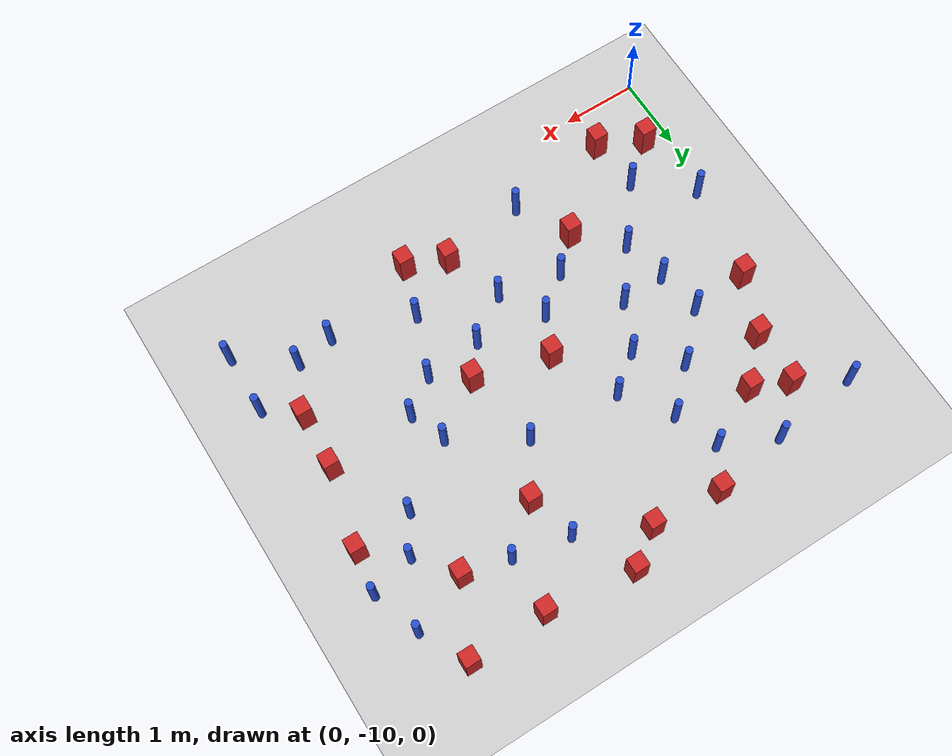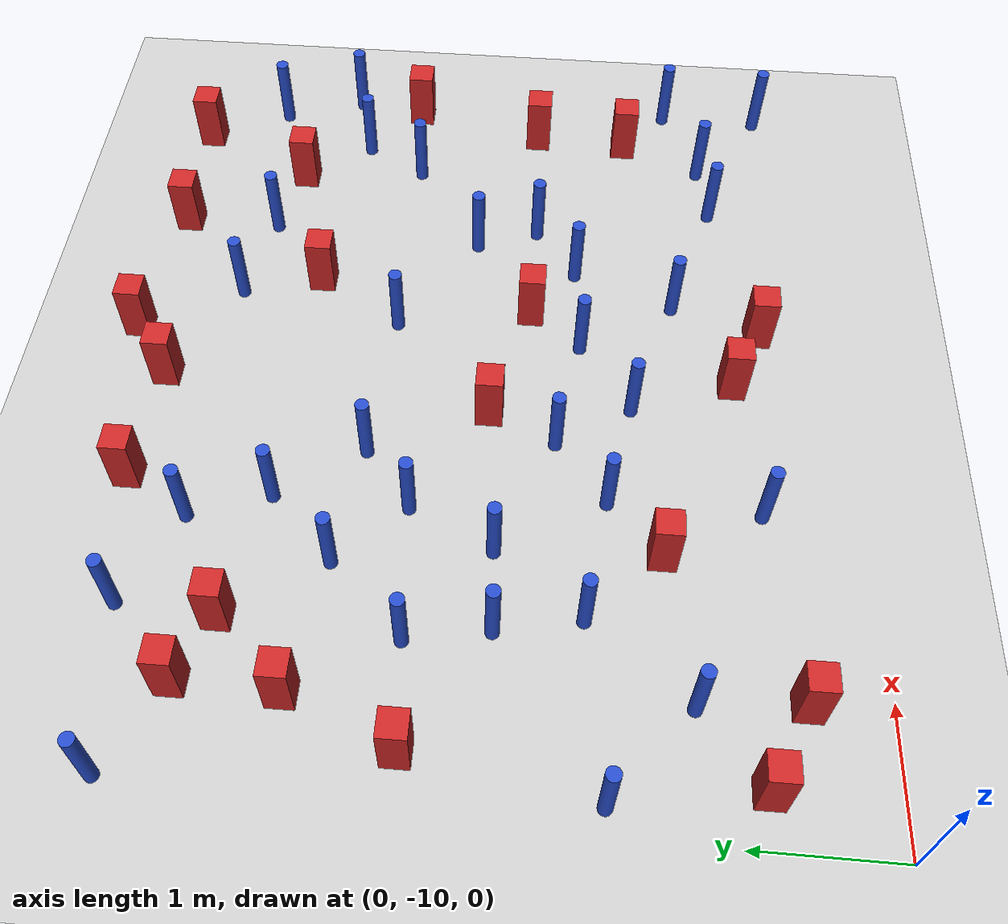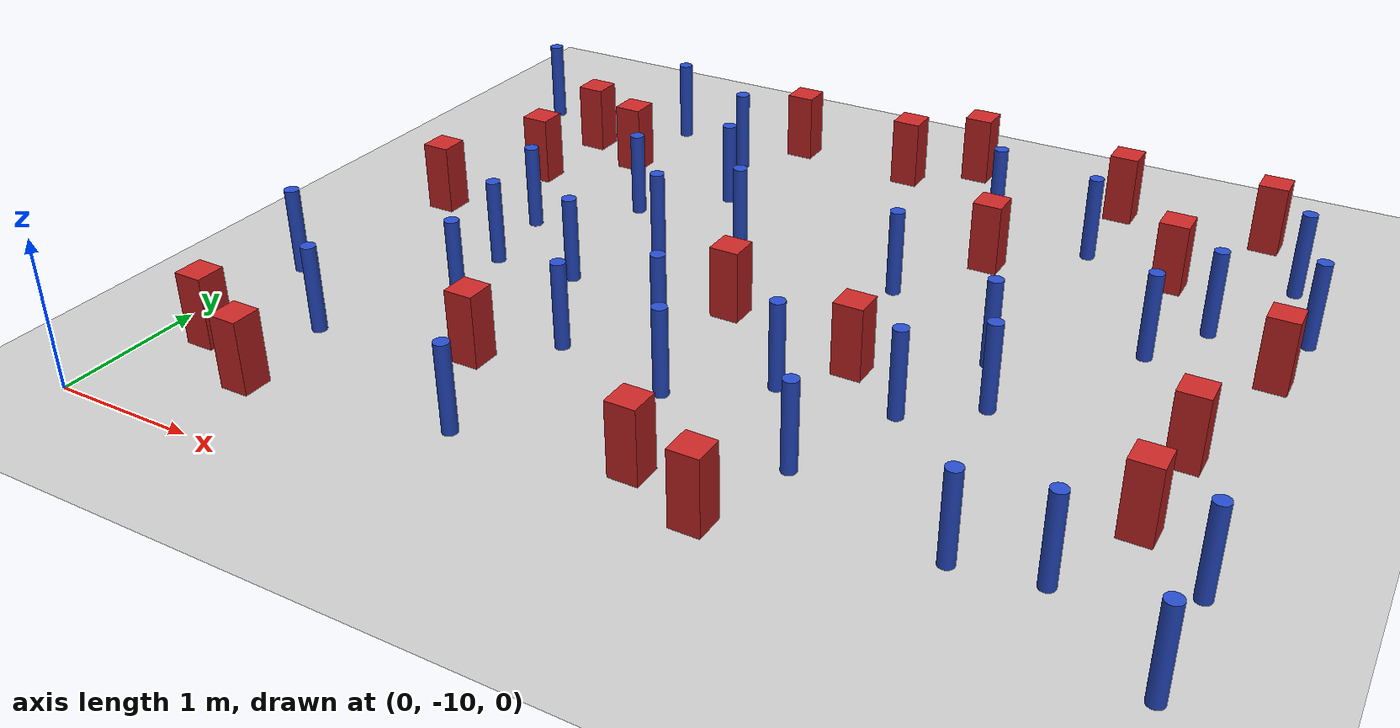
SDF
<sdf version="1.6">
 <world name="default">
  <model name="ground_plane">
   <static>1</static>
   <link name="link">
    <collision name="collision">
     <geometry><plane><normal>0 0 1</normal><size>100 100</size></plane></geometry>
     <surface><friction><ode><mu>100</mu><mu2>50</mu2></ode></friction></surface>
    </collision>
    <visual name="visual">
     <cast_shadows>0</cast_shadows>
     <geometry><plane><normal>0 0 1</normal><size>100 100</size></plane></geometry>
     <material>
      <ambient>1.0 1.0 1.0 1.0</ambient>
      <diffuse>0.8 0.8 0.8 1.0</diffuse>
      <specular>0.01 0.01 0.01 1.000000</specular>
     </material>
    </visual>
   </link>
  </model>
  <model name="square_post_obstacle6">
   <static>true</static>
   <pose>0.415322058031 -6.86767348785 8.22691968438e-08 7.2212513382e-06 -7.54495500217e-07 2.29674213826e-05</pose>
   <link name="link">
    <pose>0 0 0.25 0 -0 0</pose>
    <inertial>
     <mass>100</mass>
     <inertia>
      <ixx>0.166667</ixx>
      <ixy>0</ixy>
      <ixz>0</ixz>
      <iyy>0.166667</iyy>
      <iyz>0</iyz>
      <izz>0.166667</izz>
     </inertia>
    </inertial>
    <collision name="collision"><geometry><box><size>.2 .2 .5</size></box></geometry></collision>
    <visual name="visual">
     <geometry><box><size>.2 .2 .5</size></box></geometry>
     <material>
      <script><name>Gazebo/Red</name><uri>file://media/materials/scripts/gazebo.material</uri></script>
     </material>
    </visual>
   </link>
  </model>
  <model name="pole_obstacle8">
   <static>true</static>
   <pose>4.90002891867 -7.51180466163 2.88873142074e-08 -9.90536690842e-09 4.60219948965e-07 -1.20965994976e-07</pose>
   <link name="link">
    <pose>0 0 0.3 0 -0 0</pose>
    <inertial>
     <mass>1</mass>
     <inertia><ixx>0.145833</ixx><ixy>0</ixy><ixz>0</ixz><iyy>0.145833</iyy><iyz>0</iyz><izz>0.125</izz></inertia>
    </inertial>
    <collision name="collision">
     <geometry><cylinder><radius>0.05</radius><length>.6</length></cylinder></geometry>
    </collision>
    <visual name="visual">
     <geometry><cylinder><radius>0.05</radius><length>.6</length></cylinder></geometry>
     <material>
      <script><name>Gazebo/Blue</name><uri>file://media/materials/scripts/gazebo.material</uri></script>
     </material>
    </visual>
   </link>
  </model>
  <model name="pole_obstacle9">
   <static>true</static>
   <pose>6.40183729626 -9.36785686819 2.88873142074e-08 -9.9053668967e-09 4.60219948993e-07 -1.20965994957e-07</pose>
   <link name="link">
    <pose>0 0 0.3 0 -0 0</pose>
    <inertial>
     <mass>1</mass>
     <inertia><ixx>0.145833</ixx><ixy>0</ixy><ixz>0</ixz><iyy>0.145833</iyy><iyz>0</iyz><izz>0.125</izz></inertia>
    </inertial>
    <collision name="collision">
     <geometry><cylinder><radius>0.05</radius><length>.6</length></cylinder></geometry>
    </collision>
    <visual name="visual">
     <geometry><cylinder><radius>0.05</radius><length>.6</length></cylinder></geometry>
     <material>
      <script><name>Gazebo/Blue</name><uri>file://media/materials/scripts/gazebo.material</uri></script>
     </material>
    </visual>
   </link>
  </model>
  <model name="square_post_obstacle17">
   <static>true</static>
   <pose>5.99555126417 -8.20845346596 8.22691968438e-08 7.2212513382e-06 -7.54495500217e-07 2.29674213826e-05</pose>
   <link name="link">
    <pose>0 0 0.25 0 -0 0</pose>
    <inertial>
     <mass>100</mass>
     <inertia>
      <ixx>0.166667</ixx>
      <ixy>0</ixy>
      <ixz>0</ixz>
      <iyy>0.166667</iyy>
      <iyz>0</iyz>
      <izz>0.166667</izz>
     </inertia>
    </inertial>
    <collision name="collision"><geometry><box><size>.2 .2 .5</size></box></geometry></collision>
    <visual name="visual">
     <geometry><box><size>.2 .2 .5</size></box></geometry>
     <material>
      <script><name>Gazebo/Red</name><uri>file://media/materials/scripts/gazebo.material</uri></script>
     </material>
    </visual>
   </link>
  </model>
  <model name="square_post_obstacle21">
   <static>true</static>
   <pose>5.41926579649 -5.4989104012 8.22691968438e-08 7.22125133819e-06 -7.54495500217e-07 2.29674213826e-05</pose>
   <link name="link">
    <pose>0 0 0.25 0 -0 0</pose>
    <inertial>
     <mass>100</mass>
     <inertia>
      <ixx>0.166667</ixx>
      <ixy>0</ixy>
      <ixz>0</ixz>
      <iyy>0.166667</iyy>
      <iyz>0</iyz>
      <izz>0.166667</izz>
     </inertia>
    </inertial>
    <collision name="collision"><geometry><box><size>.2 .2 .5</size></box></geometry></collision>
    <visual name="visual">
     <geometry><box><size>.2 .2 .5</size></box></geometry>
     <material>
      <script><name>Gazebo/Red</name><uri>file://media/materials/scripts/gazebo.material</uri></script>
     </material>
    </visual>
   </link>
  </model>
  <model name="pole_obstacle16">
   <static>true</static>
   <pose>1.87375932207 -7.36777202343 2.88873142074e-08 -9.90536689852e-09 4.60219948989e-07 -1.2096599496e-07</pose>
   <link name="link">
    <pose>0 0 0.3 0 -0 0</pose>
    <inertial>
     <mass>1</mass>
     <inertia><ixx>0.145833</ixx><ixy>0</ixy><ixz>0</ixz><iyy>0.145833</iyy><iyz>0</iyz><izz>0.125</izz></inertia>
    </inertial>
    <collision name="collision">
     <geometry><cylinder><radius>0.05</radius><length>.6</length></cylinder></geometry>
    </collision>
    <visual name="visual">
     <geometry><cylinder><radius>0.05</radius><length>.6</length></cylinder></geometry>
     <material>
      <script><name>Gazebo/Blue</name><uri>file://media/materials/scripts/gazebo.material</uri></script>
     </material>
    </visual>
   </link>
  </model>
  <model name="pole_obstacle25">
   <static>true</static>
   <pose>0.850057579253 -8.72559462262 2.88873142074e-08 -9.90536690779e-09 4.60219948967e-07 -1.20965994975e-07</pose>
   <link name="link">
    <pose>0 0 0.3 0 -0 0</pose>
    <inertial>
     <mass>1</mass>
     <inertia><ixx>0.145833</ixx><ixy>0</ixy><ixz>0</ixz><iyy>0.145833</iyy><iyz>0</iyz><izz>0.125</izz></inertia>
    </inertial>
    <collision name="collision">
     <geometry><cylinder><radius>0.05</radius><length>.6</length></cylinder></geometry>
    </collision>
    <visual name="visual">
     <geometry><cylinder><radius>0.05</radius><length>.6</length></cylinder></geometry>
     <material>
      <script><name>Gazebo/Blue</name><uri>file://media/materials/scripts/gazebo.material</uri></script>
     </material>
    </visual>
   </link>
  </model>
  <model name="pole_obstacle29">
   <static>true</static>
   <pose>4.16363040737 -8.61375321939 2.88873142074e-08 -9.9053668967e-09 4.60219948993e-07 -1.20965994957e-07</pose>
   <link name="link">
    <pose>0 0 0.3 0 -0 0</pose>
    <inertial>
     <mass>1</mass>
     <inertia><ixx>0.145833</ixx><ixy>0</ixy><ixz>0</ixz><iyy>0.145833</iyy><iyz>0</iyz><izz>0.125</izz></inertia>
    </inertial>
    <collision name="collision">
     <geometry><cylinder><radius>0.05</radius><length>.6</length></cylinder></geometry>
    </collision>
    <visual name="visual">
     <geometry><cylinder><radius>0.05</radius><length>.6</length></cylinder></geometry>
     <material>
      <script><name>Gazebo/Blue</name><uri>file://media/materials/scripts/gazebo.material</uri></script>
     </material>
    </visual>
   </link>
  </model>
  <model name="square_post_obstacle34">
   <static>true</static>
   <pose>5.85978679327 -4.59039972074 8.22691968438e-08 7.2212513382e-06 -7.54495500217e-07 2.29674213826e-05</pose>
   <link name="link">
    <pose>0 0 0.25 0 -0 0</pose>
    <inertial>
     <mass>100</mass>
     <inertia>
      <ixx>0.166667</ixx>
      <ixy>0</ixy>
      <ixz>0</ixz>
      <iyy>0.166667</iyy>
      <iyz>0</iyz>
      <izz>0.166667</izz>
     </inertia>
    </inertial>
    <collision name="collision"><geometry><box><size>.2 .2 .5</size></box></geometry></collision>
    <visual name="visual">
     <geometry><box><size>.2 .2 .5</size></box></geometry>
     <material>
      <script><name>Gazebo/Red</name><uri>file://media/materials/scripts/gazebo.material</uri></script>
     </material>
    </visual>
   </link>
  </model>
  <model name="pole_obstacle38">
   <static>true</static>
   <pose>3.14869047652 -8.3020626892 2.88873142074e-08 -9.90536692318e-09 4.6021994893e-07 -1.20965994988e-07</pose>
   <link name="link">
    <pose>0 0 0.3 0 -0 0</pose>
    <inertial>
     <mass>1</mass>
     <inertia><ixx>0.145833</ixx><ixy>0</ixy><ixz>0</ixz><iyy>0.145833</iyy><iyz>0</iyz><izz>0.125</izz></inertia>
    </inertial>
    <collision name="collision">
     <geometry><cylinder><radius>0.05</radius><length>.6</length></cylinder></geometry>
    </collision>
    <visual name="visual">
     <geometry><cylinder><radius>0.05</radius><length>.6</length></cylinder></geometry>
     <material>
      <script><name>Gazebo/Blue</name><uri>file://media/materials/scripts/gazebo.material</uri></script>
     </material>
    </visual>
   </link>
  </model>
  <model name="pole_obstacle43">
   <static>true</static>
   <pose>2.32405264413 -8.1391681193 2.88873142074e-08 -9.90536692318e-09 4.6021994893e-07 -1.20965994988e-07</pose>
   <link name="link">
    <pose>0 0 0.3 0 -0 0</pose>
    <inertial>
     <mass>1</mass>
     <inertia><ixx>0.145833</ixx><ixy>0</ixy><ixz>0</ixz><iyy>0.145833</iyy><iyz>0</iyz><izz>0.125</izz></inertia>
    </inertial>
    <collision name="collision">
     <geometry><cylinder><radius>0.05</radius><length>.6</length></cylinder></geometry>
    </collision>
    <visual name="visual">
     <geometry><cylinder><radius>0.05</radius><length>.6</length></cylinder></geometry>
     <material>
      <script><name>Gazebo/Blue</name><uri>file://media/materials/scripts/gazebo.material</uri></script>
     </material>
    </visual>
   </link>
  </model>
  <model name="square_post_obstacle43">
   <static>true</static>
   <pose>2.28726980885 -4.71082801467 8.22691968438e-08 7.2212513382e-06 -7.54495500217e-07 2.29674213826e-05</pose>
   <link name="link">
    <pose>0 0 0.25 0 -0 0</pose>
    <inertial>
     <mass>100</mass>
     <inertia>
      <ixx>0.166667</ixx>
      <ixy>0</ixy>
      <ixz>0</ixz>
      <iyy>0.166667</iyy>
      <iyz>0</iyz>
      <izz>0.166667</izz>
     </inertia>
    </inertial>
    <collision name="collision"><geometry><box><size>.2 .2 .5</size></box></geometry></collision>
    <visual name="visual">
     <geometry><box><size>.2 .2 .5</size></box></geometry>
     <material>
      <script><name>Gazebo/Red</name><uri>file://media/materials/scripts/gazebo.material</uri></script>
     </material>
    </visual>
   </link>
  </model>
  <model name="square_post_obstacle47">
   <static>true</static>
   <pose>4.25158930889 -5.82174219561 8.22691968438e-08 7.2212513382e-06 -7.54495500217e-07 2.29674213826e-05</pose>
   <link name="link">
    <pose>0 0 0.25 0 -0 0</pose>
    <inertial>
     <mass>100</mass>
     <inertia>
      <ixx>0.166667</ixx>
      <ixy>0</ixy>
      <ixz>0</ixz>
      <iyy>0.166667</iyy>
      <iyz>0</iyz>
      <izz>0.166667</izz>
     </inertia>
    </inertial>
    <collision name="collision"><geometry><box><size>.2 .2 .5</size></box></geometry></collision>
    <visual name="visual">
     <geometry><box><size>.2 .2 .5</size></box></geometry>
     <material>
      <script><name>Gazebo/Red</name><uri>file://media/materials/scripts/gazebo.material</uri></script>
     </material>
    </visual>
   </link>
  </model>
  <model name="pole_obstacle52">
   <static>true</static>
   <pose>2.1740612613 -6.74875326974 2.88873142074e-08 -9.90536689859e-09 4.60219948989e-07 -1.20965994961e-07</pose>
   <link name="link">
    <pose>0 0 0.3 0 -0 0</pose>
    <inertial>
     <mass>1</mass>
     <inertia><ixx>0.145833</ixx><ixy>0</ixy><ixz>0</ixz><iyy>0.145833</iyy><iyz>0</iyz><izz>0.125</izz></inertia>
    </inertial>
    <collision name="collision">
     <geometry><cylinder><radius>0.05</radius><length>.6</length></cylinder></geometry>
    </collision>
    <visual name="visual">
     <geometry><cylinder><radius>0.05</radius><length>.6</length></cylinder></geometry>
     <material>
      <script><name>Gazebo/Blue</name><uri>file://media/materials/scripts/gazebo.material</uri></script>
     </material>
    </visual>
   </link>
  </model>
  <model name="square_post_obstacle56">
   <static>true</static>
   <pose>3.42450353995 -9.0579846423 8.22691968438e-08 7.22125133819e-06 -7.54495500217e-07 2.29674213826e-05</pose>
   <link name="link">
    <pose>0 0 0.25 0 -0 0</pose>
    <inertial>
     <mass>100</mass>
     <inertia>
      <ixx>0.166667</ixx>
      <ixy>0</ixy>
      <ixz>0</ixz>
      <iyy>0.166667</iyy>
      <iyz>0</iyz>
      <izz>0.166667</izz>
     </inertia>
    </inertial>
    <collision name="collision"><geometry><box><size>.2 .2 .5</size></box></geometry></collision>
    <visual name="visual">
     <geometry><box><size>.2 .2 .5</size></box></geometry>
     <material>
      <script><name>Gazebo/Red</name><uri>file://media/materials/scripts/gazebo.material</uri></script>
     </material>
    </visual>
   </link>
  </model>
  <model name="pole_obstacle53">
   <static>true</static>
   <pose>5.53423224682 -6.4806238854 2.88873142074e-08 -9.90536690842e-09 4.60219948965e-07 -1.20965994976e-07</pose>
   <link name="link">
    <pose>0 0 0.3 0 -0 0</pose>
    <inertial>
     <mass>1</mass>
     <inertia><ixx>0.145833</ixx><ixy>0</ixy><ixz>0</ixz><iyy>0.145833</iyy><iyz>0</iyz><izz>0.125</izz></inertia>
    </inertial>
    <collision name="collision">
     <geometry><cylinder><radius>0.05</radius><length>.6</length></cylinder></geometry>
    </collision>
    <visual name="visual">
     <geometry><cylinder><radius>0.05</radius><length>.6</length></cylinder></geometry>
     <material>
      <script><name>Gazebo/Blue</name><uri>file://media/materials/scripts/gazebo.material</uri></script>
     </material>
    </visual>
   </link>
  </model>
  <model name="pole_obstacle56">
   <static>true</static>
   <pose>5.71898908784 -8.84863410984 2.88873142074e-08 -9.9053668967e-09 4.60219948993e-07 -1.20965994957e-07</pose>
   <link name="link">
    <pose>0 0 0.3 0 -0 0</pose>
    <inertial>
     <mass>1</mass>
     <inertia><ixx>0.145833</ixx><ixy>0</ixy><ixz>0</ixz><iyy>0.145833</iyy><iyz>0</iyz><izz>0.125</izz></inertia>
    </inertial>
    <collision name="collision">
     <geometry><cylinder><radius>0.05</radius><length>.6</length></cylinder></geometry>
    </collision>
    <visual name="visual">
     <geometry><cylinder><radius>0.05</radius><length>.6</length></cylinder></geometry>
     <material>
      <script><name>Gazebo/Blue</name><uri>file://media/materials/scripts/gazebo.material</uri></script>
     </material>
    </visual>
   </link>
  </model>
  <model name="pole_obstacle59">
   <static>true</static>
   <pose>1.40137541284 -8.00488356607 2.88873142074e-08 -9.90536691789e-09 4.60219948943e-07 -1.20965994989e-07</pose>
   <link name="link">
    <pose>0 0 0.3 0 -0 0</pose>
    <inertial>
     <mass>1</mass>
     <inertia><ixx>0.145833</ixx><ixy>0</ixy><ixz>0</ixz><iyy>0.145833</iyy><iyz>0</iyz><izz>0.125</izz></inertia>
    </inertial>
    <collision name="collision">
     <geometry><cylinder><radius>0.05</radius><length>.6</length></cylinder></geometry>
    </collision>
    <visual name="visual">
     <geometry><cylinder><radius>0.05</radius><length>.6</length></cylinder></geometry>
     <material>
      <script><name>Gazebo/Blue</name><uri>file://media/materials/scripts/gazebo.material</uri></script>
     </material>
    </visual>
   </link>
  </model>
  <model name="pole_obstacle63">
   <static>true</static>
   <pose>1.98623970117 -5.19156800052 2.88873142074e-08 -9.9053668918e-09 4.60219949005e-07 -1.20965994951e-07</pose>
   <link name="link">
    <pose>0 0 0.3 0 -0 0</pose>
    <inertial>
     <mass>1</mass>
     <inertia><ixx>0.145833</ixx><ixy>0</ixy><ixz>0</ixz><iyy>0.145833</iyy><iyz>0</iyz><izz>0.125</izz></inertia>
    </inertial>
    <collision name="collision">
     <geometry><cylinder><radius>0.05</radius><length>.6</length></cylinder></geometry>
    </collision>
    <visual name="visual">
     <geometry><cylinder><radius>0.05</radius><length>.6</length></cylinder></geometry>
     <material>
      <script><name>Gazebo/Blue</name><uri>file://media/materials/scripts/gazebo.material</uri></script>
     </material>
    </visual>
   </link>
  </model>
  <model name="pole_obstacle71">
   <static>true</static>
   <pose>4.07756316649 -5.19965872193 2.88873142074e-08 -9.90536690842e-09 4.60219948965e-07 -1.20965994976e-07</pose>
   <link name="link">
    <pose>0 0 0.3 0 -0 0</pose>
    <inertial>
     <mass>1</mass>
     <inertia><ixx>0.145833</ixx><ixy>0</ixy><ixz>0</ixz><iyy>0.145833</iyy><iyz>0</iyz><izz>0.125</izz></inertia>
    </inertial>
    <collision name="collision">
     <geometry><cylinder><radius>0.05</radius><length>.6</length></cylinder></geometry>
    </collision>
    <visual name="visual">
     <geometry><cylinder><radius>0.05</radius><length>.6</length></cylinder></geometry>
     <material>
      <script><name>Gazebo/Blue</name><uri>file://media/materials/scripts/gazebo.material</uri></script>
     </material>
    </visual>
   </link>
  </model>
  <model name="pole_obstacle77">
   <static>true</static>
   <pose>2.30308946681 -9.22970113784 2.88873142074e-08 -9.90536692318e-09 4.6021994893e-07 -1.20965994988e-07</pose>
   <link name="link">
    <pose>0 0 0.3 0 -0 0</pose>
    <inertial>
     <mass>1</mass>
     <inertia><ixx>0.145833</ixx><ixy>0</ixy><ixz>0</ixz><iyy>0.145833</iyy><iyz>0</iyz><izz>0.125</izz></inertia>
    </inertial>
    <collision name="collision">
     <geometry><cylinder><radius>0.05</radius><length>.6</length></cylinder></geometry>
    </collision>
    <visual name="visual">
     <geometry><cylinder><radius>0.05</radius><length>.6</length></cylinder></geometry>
     <material>
      <script><name>Gazebo/Blue</name><uri>file://media/materials/scripts/gazebo.material</uri></script>
     </material>
    </visual>
   </link>
  </model>
  <model name="pole_obstacle81">
   <static>true</static>
   <pose>1.16763589377 -6.81045999129 2.88873142074e-08 -9.90536689852e-09 4.60219948989e-07 -1.2096599496e-07</pose>
   <link name="link">
    <pose>0 0 0.3 0 -0 0</pose>
    <inertial>
     <mass>1</mass>
     <inertia><ixx>0.145833</ixx><ixy>0</ixy><ixz>0</ixz><iyy>0.145833</iyy><iyz>0</iyz><izz>0.125</izz></inertia>
    </inertial>
    <collision name="collision">
     <geometry><cylinder><radius>0.05</radius><length>.6</length></cylinder></geometry>
    </collision>
    <visual name="visual">
     <geometry><cylinder><radius>0.05</radius><length>.6</length></cylinder></geometry>
     <material>
      <script><name>Gazebo/Blue</name><uri>file://media/materials/scripts/gazebo.material</uri></script>
     </material>
    </visual>
   </link>
  </model>
  <model name="pole_obstacle88">
   <static>true</static>
   <pose>3.71216052329 -7.90400213916 2.88873142074e-08 -9.90536689859e-09 4.60219948989e-07 -1.20965994961e-07</pose>
   <link name="link">
    <pose>0 0 0.3 0 -0 0</pose>
    <inertial>
     <mass>1</mass>
     <inertia><ixx>0.145833</ixx><ixy>0</ixy><ixz>0</ixz><iyy>0.145833</iyy><iyz>0</iyz><izz>0.125</izz></inertia>
    </inertial>
    <collision name="collision">
     <geometry><cylinder><radius>0.05</radius><length>.6</length></cylinder></geometry>
    </collision>
    <visual name="visual">
     <geometry><cylinder><radius>0.05</radius><length>.6</length></cylinder></geometry>
     <material>
      <script><name>Gazebo/Blue</name><uri>file://media/materials/scripts/gazebo.material</uri></script>
     </material>
    </visual>
   </link>
  </model>
  <model name="pole_obstacle89">
   <static>true</static>
   <pose>4.81425711517 -5.35042578705 2.88873142074e-08 -9.90536690842e-09 4.60219948965e-07 -1.20965994976e-07</pose>
   <link name="link">
    <pose>0 0 0.3 0 -0 0</pose>
    <inertial>
     <mass>1</mass>
     <inertia><ixx>0.145833</ixx><ixy>0</ixy><ixz>0</ixz><iyy>0.145833</iyy><iyz>0</iyz><izz>0.125</izz></inertia>
    </inertial>
    <collision name="collision">
     <geometry><cylinder><radius>0.05</radius><length>.6</length></cylinder></geometry>
    </collision>
    <visual name="visual">
     <geometry><cylinder><radius>0.05</radius><length>.6</length></cylinder></geometry>
     <material>
      <script><name>Gazebo/Blue</name><uri>file://media/materials/scripts/gazebo.material</uri></script>
     </material>
    </visual>
   </link>
  </model>
  <model name="square_post_obstacle85">
   <static>true</static>
   <pose>1.2385242844 -5.57460624003 8.22691968438e-08 7.2212513382e-06 -7.54495500217e-07 2.29674213826e-05</pose>
   <link name="link">
    <pose>0 0 0.25 0 -0 0</pose>
    <inertial>
     <mass>100</mass>
     <inertia>
      <ixx>0.166667</ixx>
      <ixy>0</ixy>
      <ixz>0</ixz>
      <iyy>0.166667</iyy>
      <iyz>0</iyz>
      <izz>0.166667</izz>
     </inertia>
    </inertial>
    <collision name="collision"><geometry><box><size>.2 .2 .5</size></box></geometry></collision>
    <visual name="visual">
     <geometry><box><size>.2 .2 .5</size></box></geometry>
     <material>
      <script><name>Gazebo/Red</name><uri>file://media/materials/scripts/gazebo.material</uri></script>
     </material>
    </visual>
   </link>
  </model>
  <model name="pole_obstacle98">
   <static>true</static>
   <pose>1.70476349366 -6.25943628982 2.88873142074e-08 -9.90536689852e-09 4.60219948989e-07 -1.2096599496e-07</pose>
   <link name="link">
    <pose>0 0 0.3 0 -0 0</pose>
    <inertial>
     <mass>1</mass>
     <inertia><ixx>0.145833</ixx><ixy>0</ixy><ixz>0</ixz><iyy>0.145833</iyy><iyz>0</iyz><izz>0.125</izz></inertia>
    </inertial>
    <collision name="collision">
     <geometry><cylinder><radius>0.05</radius><length>.6</length></cylinder></geometry>
    </collision>
    <visual name="visual">
     <geometry><cylinder><radius>0.05</radius><length>.6</length></cylinder></geometry>
     <material>
      <script><name>Gazebo/Blue</name><uri>file://media/materials/scripts/gazebo.material</uri></script>
     </material>
    </visual>
   </link>
  </model>
  <model name="pole_obstacle99">
   <static>true</static>
   <pose>0.182000700432 -8.16703380786 2.88873142074e-08 -9.90536690875e-09 4.60219948965e-07 -1.20965994978e-07</pose>
   <link name="link">
    <pose>0 0 0.3 0 -0 0</pose>
    <inertial>
     <mass>1</mass>
     <inertia><ixx>0.145833</ixx><ixy>0</ixy><ixz>0</ixz><iyy>0.145833</iyy><iyz>0</iyz><izz>0.125</izz></inertia>
    </inertial>
    <collision name="collision">
     <geometry><cylinder><radius>0.05</radius><length>.6</length></cylinder></geometry>
    </collision>
    <visual name="visual">
     <geometry><cylinder><radius>0.05</radius><length>.6</length></cylinder></geometry>
     <material>
      <script><name>Gazebo/Blue</name><uri>file://media/materials/scripts/gazebo.material</uri></script>
     </material>
    </visual>
   </link>
  </model>
  <model name="square_post_obstacle88">
   <static>true</static>
   <pose>0.918545488383 -9.43654356551 8.22691968438e-08 7.2212513382e-06 -7.54495500217e-07 2.29674213826e-05</pose>
   <link name="link">
    <pose>0 0 0.25 0 -0 0</pose>
    <inertial>
     <mass>100</mass>
     <inertia>
      <ixx>0.166667</ixx>
      <ixy>0</ixy>
      <ixz>0</ixz>
      <iyy>0.166667</iyy>
      <iyz>0</iyz>
      <izz>0.166667</izz>
     </inertia>
    </inertial>
    <collision name="collision"><geometry><box><size>.2 .2 .5</size></box></geometry></collision>
    <visual name="visual">
     <geometry><box><size>.2 .2 .5</size></box></geometry>
     <material>
      <script><name>Gazebo/Red</name><uri>file://media/materials/scripts/gazebo.material</uri></script>
     </material>
    </visual>
   </link>
  </model>
  <model name="square_post_obstacle101">
   <static>true</static>
   <pose>3.03592099497 -7.2527526989 8.22691968438e-08 7.2212513382e-06 -7.54495500217e-07 2.29674213826e-05</pose>
   <link name="link">
    <pose>0 0 0.25 0 -0 0</pose>
    <inertial>
     <mass>100</mass>
     <inertia>
      <ixx>0.166667</ixx>
      <ixy>0</ixy>
      <ixz>0</ixz>
      <iyy>0.166667</iyy>
      <iyz>0</iyz>
      <izz>0.166667</izz>
     </inertia>
    </inertial>
    <collision name="collision"><geometry><box><size>.2 .2 .5</size></box></geometry></collision>
    <visual name="visual">
     <geometry><box><size>.2 .2 .5</size></box></geometry>
     <material>
      <script><name>Gazebo/Red</name><uri>file://media/materials/scripts/gazebo.material</uri></script>
     </material>
    </visual>
   </link>
  </model>
  <model name="square_post_obstacle105">
   <static>true</static>
   <pose>3.66547670914 -4.45870023039 8.22691968438e-08 7.2212513382e-06 -7.54495500217e-07 2.29674213826e-05</pose>
   <link name="link">
    <pose>0 0 0.25 0 -0 0</pose>
    <inertial>
     <mass>100</mass>
     <inertia>
      <ixx>0.166667</ixx>
      <ixy>0</ixy>
      <ixz>0</ixz>
      <iyy>0.166667</iyy>
      <iyz>0</iyz>
      <izz>0.166667</izz>
     </inertia>
    </inertial>
    <collision name="collision"><geometry><box><size>.2 .2 .5</size></box></geometry></collision>
    <visual name="visual">
     <geometry><box><size>.2 .2 .5</size></box></geometry>
     <material>
      <script><name>Gazebo/Red</name><uri>file://media/materials/scripts/gazebo.material</uri></script>
     </material>
    </visual>
   </link>
  </model>
  <model name="square_post_obstacle117">
   <static>true</static>
   <pose>6.04341552226 -7.46416859922 8.22691968438e-08 7.2212513382e-06 -7.54495500217e-07 2.29674213826e-05</pose>
   <link name="link">
    <pose>0 0 0.25 0 -0 0</pose>
    <inertial>
     <mass>100</mass>
     <inertia>
      <ixx>0.166667</ixx>
      <ixy>0</ixy>
      <ixz>0</ixz>
      <iyy>0.166667</iyy>
      <iyz>0</iyz>
      <izz>0.166667</izz>
     </inertia>
    </inertial>
    <collision name="collision"><geometry><box><size>.2 .2 .5</size></box></geometry></collision>
    <visual name="visual">
     <geometry><box><size>.2 .2 .5</size></box></geometry>
     <material>
      <script><name>Gazebo/Red</name><uri>file://media/materials/scripts/gazebo.material</uri></script>
     </material>
    </visual>
   </link>
  </model>
  <model name="square_post_obstacle118">
   <static>true</static>
   <pose>0.737681468908 -6.09273726908 8.22691968438e-08 7.2212513382e-06 -7.54495500217e-07 2.29674213826e-05</pose>
   <link name="link">
    <pose>0 0 0.25 0 -0 0</pose>
    <inertial>
     <mass>100</mass>
     <inertia>
      <ixx>0.166667</ixx>
      <ixy>0</ixy>
      <ixz>0</ixz>
      <iyy>0.166667</iyy>
      <iyz>0</iyz>
      <izz>0.166667</izz>
     </inertia>
    </inertial>
    <collision name="collision"><geometry><box><size>.2 .2 .5</size></box></geometry></collision>
    <visual name="visual">
     <geometry><box><size>.2 .2 .5</size></box></geometry>
     <material>
      <script><name>Gazebo/Red</name><uri>file://media/materials/scripts/gazebo.material</uri></script>
     </material>
    </visual>
   </link>
  </model>
  <model name="pole_obstacle140">
   <static>true</static>
   <pose>3.84024185706 -6.47394986124 2.88873142074e-08 -9.90536689859e-09 4.60219948989e-07 -1.20965994961e-07</pose>
   <link name="link">
    <pose>0 0 0.3 0 -0 0</pose>
    <inertial>
     <mass>1</mass>
     <inertia><ixx>0.145833</ixx><ixy>0</ixy><ixz>0</ixz><iyy>0.145833</iyy><iyz>0</iyz><izz>0.125</izz></inertia>
    </inertial>
    <collision name="collision">
     <geometry><cylinder><radius>0.05</radius><length>.6</length></cylinder></geometry>
    </collision>
    <visual name="visual">
     <geometry><cylinder><radius>0.05</radius><length>.6</length></cylinder></geometry>
     <material>
      <script><name>Gazebo/Blue</name><uri>file://media/materials/scripts/gazebo.material</uri></script>
     </material>
    </visual>
   </link>
  </model>
  <model name="square_post_obstacle133">
   <static>true</static>
   <pose>4.02396224699 -7.50791195488 8.22691968438e-08 7.2212513382e-06 -7.54495500217e-07 2.29674213826e-05</pose>
   <link name="link">
    <pose>0 0 0.25 0 -0 0</pose>
    <inertial>
     <mass>100</mass>
     <inertia>
      <ixx>0.166667</ixx>
      <ixy>0</ixy>
      <ixz>0</ixz>
      <iyy>0.166667</iyy>
      <iyz>0</iyz>
      <izz>0.166667</izz>
     </inertia>
    </inertial>
    <collision name="collision"><geometry><box><size>.2 .2 .5</size></box></geometry></collision>
    <visual name="visual">
     <geometry><box><size>.2 .2 .5</size></box></geometry>
     <material>
      <script><name>Gazebo/Red</name><uri>file://media/materials/scripts/gazebo.material</uri></script>
     </material>
    </visual>
   </link>
  </model>
  <model name="square_post_obstacle134">
   <static>true</static>
   <pose>1.92437627282 -8.52468590678 8.22691968438e-08 7.2212513382e-06 -7.54495500217e-07 2.29674213826e-05</pose>
   <link name="link">
    <pose>0 0 0.25 0 -0 0</pose>
    <inertial>
     <mass>100</mass>
     <inertia>
      <ixx>0.166667</ixx>
      <ixy>0</ixy>
      <ixz>0</ixz>
      <iyy>0.166667</iyy>
      <iyz>0</iyz>
      <izz>0.166667</izz>
     </inertia>
    </inertial>
    <collision name="collision"><geometry><box><size>.2 .2 .5</size></box></geometry></collision>
    <visual name="visual">
     <geometry><box><size>.2 .2 .5</size></box></geometry>
     <material>
      <script><name>Gazebo/Red</name><uri>file://media/materials/scripts/gazebo.material</uri></script>
     </material>
    </visual>
   </link>
  </model>
  <model name="pole_obstacle146">
   <static>true</static>
   <pose>2.19450091875 -5.77366278484 2.88873142074e-08 -9.90536689859e-09 4.60219948989e-07 -1.20965994961e-07</pose>
   <link name="link">
    <pose>0 0 0.3 0 -0 0</pose>
    <inertial>
     <mass>1</mass>
     <inertia><ixx>0.145833</ixx><ixy>0</ixy><ixz>0</ixz><iyy>0.145833</iyy><iyz>0</iyz><izz>0.125</izz></inertia>
    </inertial>
    <collision name="collision">
     <geometry><cylinder><radius>0.05</radius><length>.6</length></cylinder></geometry>
    </collision>
    <visual name="visual">
     <geometry><cylinder><radius>0.05</radius><length>.6</length></cylinder></geometry>
     <material>
      <script><name>Gazebo/Blue</name><uri>file://media/materials/scripts/gazebo.material</uri></script>
     </material>
    </visual>
   </link>
  </model>
  <model name="pole_obstacle152">
   <static>true</static>
   <pose>5.2197685395 -8.9330192909 2.88873142074e-08 -9.9053668967e-09 4.60219948993e-07 -1.20965994957e-07</pose>
   <link name="link">
    <pose>0 0 0.3 0 -0 0</pose>
    <inertial>
     <mass>1</mass>
     <inertia><ixx>0.145833</ixx><ixy>0</ixy><ixz>0</ixz><iyy>0.145833</iyy><iyz>0</iyz><izz>0.125</izz></inertia>
    </inertial>
    <collision name="collision">
     <geometry><cylinder><radius>0.05</radius><length>.6</length></cylinder></geometry>
    </collision>
    <visual name="visual">
     <geometry><cylinder><radius>0.05</radius><length>.6</length></cylinder></geometry>
     <material>
      <script><name>Gazebo/Blue</name><uri>file://media/materials/scripts/gazebo.material</uri></script>
     </material>
    </visual>
   </link>
  </model>
  <model name="square_post_obstacle151">
   <static>true</static>
   <pose>3.94302805393 -9.27453245725 8.22691968438e-08 7.22125133819e-06 -7.54495500217e-07 2.29674213826e-05</pose>
   <link name="link">
    <pose>0 0 0.25 0 -0 0</pose>
    <inertial>
     <mass>100</mass>
     <inertia>
      <ixx>0.166667</ixx>
      <ixy>0</ixy>
      <ixz>0</ixz>
      <iyy>0.166667</iyy>
      <iyz>0</iyz>
      <izz>0.166667</izz>
     </inertia>
    </inertial>
    <collision name="collision"><geometry><box><size>.2 .2 .5</size></box></geometry></collision>
    <visual name="visual">
     <geometry><box><size>.2 .2 .5</size></box></geometry>
     <material>
      <script><name>Gazebo/Red</name><uri>file://media/materials/scripts/gazebo.material</uri></script>
     </material>
    </visual>
   </link>
  </model>
  <model name="pole_obstacle159">
   <static>true</static>
   <pose>1.28127018594 -4.86053503479 2.88873142074e-08 -9.90536689852e-09 4.60219948989e-07 -1.2096599496e-07</pose>
   <link name="link">
    <pose>0 0 0.3 0 -0 0</pose>
    <inertial>
     <mass>1</mass>
     <inertia><ixx>0.145833</ixx><ixy>0</ixy><ixz>0</ixz><iyy>0.145833</iyy><iyz>0</iyz><izz>0.125</izz></inertia>
    </inertial>
    <collision name="collision">
     <geometry><cylinder><radius>0.05</radius><length>.6</length></cylinder></geometry>
    </collision>
    <visual name="visual">
     <geometry><cylinder><radius>0.05</radius><length>.6</length></cylinder></geometry>
     <material>
      <script><name>Gazebo/Blue</name><uri>file://media/materials/scripts/gazebo.material</uri></script>
     </material>
    </visual>
   </link>
  </model>
  <model name="pole_obstacle162">
   <static>true</static>
   <pose>5.80823251388 -6.00441952543 2.88873142074e-08 -9.90536690842e-09 4.60219948965e-07 -1.20965994976e-07</pose>
   <link name="link">
    <pose>0 0 0.3 0 -0 0</pose>
    <inertial>
     <mass>1</mass>
     <inertia><ixx>0.145833</ixx><ixy>0</ixy><ixz>0</ixz><iyy>0.145833</iyy><iyz>0</iyz><izz>0.125</izz></inertia>
    </inertial>
    <collision name="collision">
     <geometry><cylinder><radius>0.05</radius><length>.6</length></cylinder></geometry>
    </collision>
    <visual name="visual">
     <geometry><cylinder><radius>0.05</radius><length>.6</length></cylinder></geometry>
     <material>
      <script><name>Gazebo/Blue</name><uri>file://media/materials/scripts/gazebo.material</uri></script>
     </material>
    </visual>
   </link>
  </model>
  <model name="pole_obstacle163">
   <static>true</static>
   <pose>4.72289355811 -7.03646720721 2.88873142074e-08 -9.90536690842e-09 4.60219948965e-07 -1.20965994976e-07</pose>
   <link name="link">
    <pose>0 0 0.3 0 -0 0</pose>
    <inertial>
     <mass>1</mass>
     <inertia><ixx>0.145833</ixx><ixy>0</ixy><ixz>0</ixz><iyy>0.145833</iyy><iyz>0</iyz><izz>0.125</izz></inertia>
    </inertial>
    <collision name="collision">
     <geometry><cylinder><radius>0.05</radius><length>.6</length></cylinder></geometry>
    </collision>
    <visual name="visual">
     <geometry><cylinder><radius>0.05</radius><length>.6</length></cylinder></geometry>
     <material>
      <script><name>Gazebo/Blue</name><uri>file://media/materials/scripts/gazebo.material</uri></script>
     </material>
    </visual>
   </link>
  </model>
  <model name="pole_obstacle164">
   <static>true</static>
   <pose>0.124830571691 -5.01502635562 2.88873142074e-08 -9.90536689835e-09 4.60219948989e-07 -1.20965994961e-07</pose>
   <link name="link">
    <pose>0 0 0.3 0 -0 0</pose>
    <inertial>
     <mass>1</mass>
     <inertia><ixx>0.145833</ixx><ixy>0</ixy><ixz>0</ixz><iyy>0.145833</iyy><iyz>0</iyz><izz>0.125</izz></inertia>
    </inertial>
    <collision name="collision">
     <geometry><cylinder><radius>0.05</radius><length>.6</length></cylinder></geometry>
    </collision>
    <visual name="visual">
     <geometry><cylinder><radius>0.05</radius><length>.6</length></cylinder></geometry>
     <material>
      <script><name>Gazebo/Blue</name><uri>file://media/materials/scripts/gazebo.material</uri></script>
     </material>
    </visual>
   </link>
  </model>
  <model name="square_post_obstacle158">
   <static>true</static>
   <pose>6.29573665172 -6.41148152326 8.22691968438e-08 7.22125133819e-06 -7.54495500217e-07 2.29674213826e-05</pose>
   <link name="link">
    <pose>0 0 0.25 0 -0 0</pose>
    <inertial>
     <mass>100</mass>
     <inertia>
      <ixx>0.166667</ixx>
      <ixy>0</ixy>
      <ixz>0</ixz>
      <iyy>0.166667</iyy>
      <iyz>0</iyz>
      <izz>0.166667</izz>
     </inertia>
    </inertial>
    <collision name="collision"><geometry><box><size>.2 .2 .5</size></box></geometry></collision>
    <visual name="visual">
     <geometry><box><size>.2 .2 .5</size></box></geometry>
     <material>
      <script><name>Gazebo/Red</name><uri>file://media/materials/scripts/gazebo.material</uri></script>
     </material>
    </visual>
   </link>
  </model>
  <model name="pole_obstacle171">
   <static>true</static>
   <pose>2.62601216505 -6.38920542408 2.88873142074e-08 -9.90536689859e-09 4.60219948989e-07 -1.20965994961e-07</pose>
   <link name="link">
    <pose>0 0 0.3 0 -0 0</pose>
    <inertial>
     <mass>1</mass>
     <inertia><ixx>0.145833</ixx><ixy>0</ixy><ixz>0</ixz><iyy>0.145833</iyy><iyz>0</iyz><izz>0.125</izz></inertia>
    </inertial>
    <collision name="collision">
     <geometry><cylinder><radius>0.05</radius><length>.6</length></cylinder></geometry>
    </collision>
    <visual name="visual">
     <geometry><cylinder><radius>0.05</radius><length>.6</length></cylinder></geometry>
     <material>
      <script><name>Gazebo/Blue</name><uri>file://media/materials/scripts/gazebo.material</uri></script>
     </material>
    </visual>
   </link>
  </model>
  <model name="pole_obstacle182">
   <static>true</static>
   <pose>4.46006247837 -7.83808176582 2.88873142074e-08 -9.90536690842e-09 4.60219948965e-07 -1.20965994976e-07</pose>
   <link name="link">
    <pose>0 0 0.3 0 -0 0</pose>
    <inertial>
     <mass>1</mass>
     <inertia><ixx>0.145833</ixx><ixy>0</ixy><ixz>0</ixz><iyy>0.145833</iyy><iyz>0</iyz><izz>0.125</izz></inertia>
    </inertial>
    <collision name="collision">
     <geometry><cylinder><radius>0.05</radius><length>.6</length></cylinder></geometry>
    </collision>
    <visual name="visual">
     <geometry><cylinder><radius>0.05</radius><length>.6</length></cylinder></geometry>
     <material>
      <script><name>Gazebo/Blue</name><uri>file://media/materials/scripts/gazebo.material</uri></script>
     </material>
    </visual>
   </link>
  </model>
  <model name="square_post_obstacle192">
   <static>true</static>
   <pose>0.346672348747 -9.16124628089 8.22691968438e-08 7.22125133819e-06 -7.54495500217e-07 2.29674213826e-05</pose>
   <link name="link">
    <pose>0 0 0.25 0 -0 0</pose>
    <inertial>
     <mass>100</mass>
     <inertia>
      <ixx>0.166667</ixx>
      <ixy>0</ixy>
      <ixz>0</ixz>
      <iyy>0.166667</iyy>
      <iyz>0</iyz>
      <izz>0.166667</izz>
     </inertia>
    </inertial>
    <collision name="collision"><geometry><box><size>.2 .2 .5</size></box></geometry></collision>
    <visual name="visual">
     <geometry><box><size>.2 .2 .5</size></box></geometry>
     <material>
      <script><name>Gazebo/Red</name><uri>file://media/materials/scripts/gazebo.material</uri></script>
     </material>
    </visual>
   </link>
  </model>
  <model name="square_post_obstacle196">
   <static>true</static>
   <pose>0.760167881252 -5.37024194762 8.22691968438e-08 7.2212513382e-06 -7.54495500217e-07 2.29674213826e-05</pose>
   <link name="link">
    <pose>0 0 0.25 0 -0 0</pose>
    <inertial>
     <mass>100</mass>
     <inertia>
      <ixx>0.166667</ixx>
      <ixy>0</ixy>
      <ixz>0</ixz>
      <iyy>0.166667</iyy>
      <iyz>0</iyz>
      <izz>0.166667</izz>
     </inertia>
    </inertial>
    <collision name="collision"><geometry><box><size>.2 .2 .5</size></box></geometry></collision>
    <visual name="visual">
     <geometry><box><size>.2 .2 .5</size></box></geometry>
     <material>
      <script><name>Gazebo/Red</name><uri>file://media/materials/scripts/gazebo.material</uri></script>
     </material>
    </visual>
   </link>
  </model>
  <model name="square_post_obstacle207">
   <static>true</static>
   <pose>3.21382458809 -4.78034671802 8.22691968438e-08 7.22125133819e-06 -7.54495500217e-07 2.29674213826e-05</pose>
   <link name="link">
    <pose>0 0 0.25 0 -0 0</pose>
    <inertial>
     <mass>100</mass>
     <inertia>
      <ixx>0.166667</ixx>
      <ixy>0</ixy>
      <ixz>0</ixz>
      <iyy>0.166667</iyy>
      <iyz>0</iyz>
      <izz>0.166667</izz>
     </inertia>
    </inertial>
    <collision name="collision"><geometry><box><size>.2 .2 .5</size></box></geometry></collision>
    <visual name="visual">
     <geometry><box><size>.2 .2 .5</size></box></geometry>
     <material>
      <script><name>Gazebo/Red</name><uri>file://media/materials/scripts/gazebo.material</uri></script>
     </material>
    </visual>
   </link>
  </model>
  <model name="pole_obstacle188">
   <static>true</static>
   <pose>1.27528108943 -7.40205475929 2.88873142074e-08 -9.90536689852e-09 4.60219948989e-07 -1.2096599496e-07</pose>
   <link name="link">
    <pose>0 0 0.3 0 -0 0</pose>
    <inertial>
     <mass>1</mass>
     <inertia><ixx>0.145833</ixx><ixy>0</ixy><ixz>0</ixz><iyy>0.145833</iyy><iyz>0</iyz><izz>0.125</izz></inertia>
    </inertial>
    <collision name="collision">
     <geometry><cylinder><radius>0.05</radius><length>.6</length></cylinder></geometry>
    </collision>
    <visual name="visual">
     <geometry><cylinder><radius>0.05</radius><length>.6</length></cylinder></geometry>
     <material>
      <script><name>Gazebo/Blue</name><uri>file://media/materials/scripts/gazebo.material</uri></script>
     </material>
    </visual>
   </link>
  </model>
  <model name="pole_obstacle196">
   <static>true</static>
   <pose>6.1818242516 -5.20484666164 2.88873142074e-08 -9.90536690842e-09 4.60219948965e-07 -1.20965994976e-07</pose>
   <link name="link">
    <pose>0 0 0.3 0 -0 0</pose>
    <inertial>
     <mass>1</mass>
     <inertia><ixx>0.145833</ixx><ixy>0</ixy><ixz>0</ixz><iyy>0.145833</iyy><iyz>0</iyz><izz>0.125</izz></inertia>
    </inertial>
    <collision name="collision">
     <geometry><cylinder><radius>0.05</radius><length>.6</length></cylinder></geometry>
    </collision>
    <visual name="visual">
     <geometry><cylinder><radius>0.05</radius><length>.6</length></cylinder></geometry>
     <material>
      <script><name>Gazebo/Blue</name><uri>file://media/materials/scripts/gazebo.material</uri></script>
     </material>
    </visual>
   </link>
  </model>
  <model name="pole_obstacle198">
   <static>true</static>
   <pose>2.79895655876 -7.75315608175 2.88873142074e-08 -9.90536689859e-09 4.60219948989e-07 -1.20965994961e-07</pose>
   <link name="link">
    <pose>0 0 0.3 0 -0 0</pose>
    <inertial>
     <mass>1</mass>
     <inertia><ixx>0.145833</ixx><ixy>0</ixy><ixz>0</ixz><iyy>0.145833</iyy><iyz>0</iyz><izz>0.125</izz></inertia>
    </inertial>
    <collision name="collision">
     <geometry><cylinder><radius>0.05</radius><length>.6</length></cylinder></geometry>
    </collision>
    <visual name="visual">
     <geometry><cylinder><radius>0.05</radius><length>.6</length></cylinder></geometry>
     <material>
      <script><name>Gazebo/Blue</name><uri>file://media/materials/scripts/gazebo.material</uri></script>
     </material>
    </visual>
   </link>
  </model>
  <model name="pole_obstacle205">
   <static>true</static>
   <pose>6.38976288301 -5.85185522995 2.88873142074e-08 -9.90536690842e-09 4.60219948965e-07 -1.20965994976e-07</pose>
   <link name="link">
    <pose>0 0 0.3 0 -0 0</pose>
    <inertial>
     <mass>1</mass>
     <inertia><ixx>0.145833</ixx><ixy>0</ixy><ixz>0</ixz><iyy>0.145833</iyy><iyz>0</iyz><izz>0.125</izz></inertia>
    </inertial>
    <collision name="collision">
     <geometry><cylinder><radius>0.05</radius><length>.6</length></cylinder></geometry>
    </collision>
    <visual name="visual">
     <geometry><cylinder><radius>0.05</radius><length>.6</length></cylinder></geometry>
     <material>
      <script><name>Gazebo/Blue</name><uri>file://media/materials/scripts/gazebo.material</uri></script>
     </material>
    </visual>
   </link>
  </model>
  <model name="pole_obstacle213">
   <static>true</static>
   <pose>6.41499726682 -8.56301953463 2.88873142074e-08 -9.9053668967e-09 4.60219948993e-07 -1.20965994957e-07</pose>
   <link name="link">
    <pose>0 0 0.3 0 -0 0</pose>
    <inertial>
     <mass>1</mass>
     <inertia><ixx>0.145833</ixx><ixy>0</ixy><ixz>0</ixz><iyy>0.145833</iyy><iyz>0</iyz><izz>0.125</izz></inertia>
    </inertial>
    <collision name="collision">
     <geometry><cylinder><radius>0.05</radius><length>.6</length></cylinder></geometry>
    </collision>
    <visual name="visual">
     <geometry><cylinder><radius>0.05</radius><length>.6</length></cylinder></geometry>
     <material>
      <script><name>Gazebo/Blue</name><uri>file://media/materials/scripts/gazebo.material</uri></script>
     </material>
    </visual>
   </link>
  </model>
  <model name="square_post_obstacle212">
   <static>true</static>
   <pose>4.82559003262 -4.60970003534 8.22691968438e-08 7.2212513382e-06 -7.54495500217e-07 2.29674213826e-05</pose>
   <link name="link">
    <pose>0 0 0.25 0 -0 0</pose>
    <inertial>
     <mass>100</mass>
     <inertia>
      <ixx>0.166667</ixx>
      <ixy>0</ixy>
      <ixz>0</ixz>
      <iyy>0.166667</iyy>
      <iyz>0</iyz>
      <izz>0.166667</izz>
     </inertia>
    </inertial>
    <collision name="collision"><geometry><box><size>.2 .2 .5</size></box></geometry></collision>
    <visual name="visual">
     <geometry><box><size>.2 .2 .5</size></box></geometry>
     <material>
      <script><name>Gazebo/Red</name><uri>file://media/materials/scripts/gazebo.material</uri></script>
     </material>
    </visual>
   </link>
  </model>
 </world>
</sdf>
